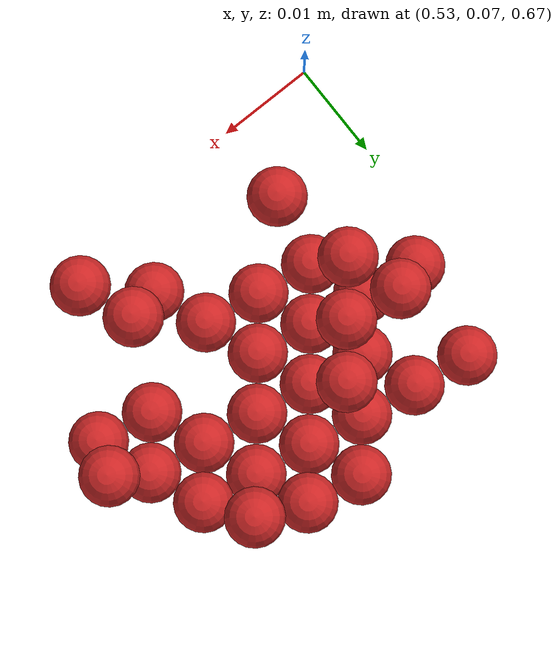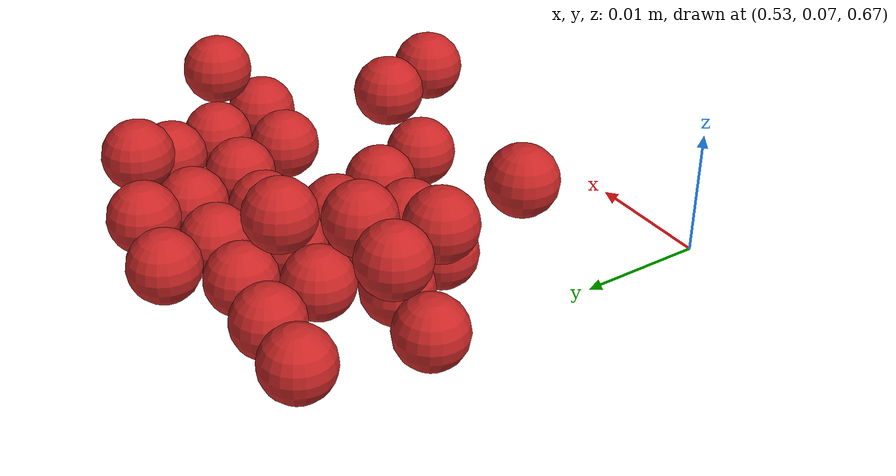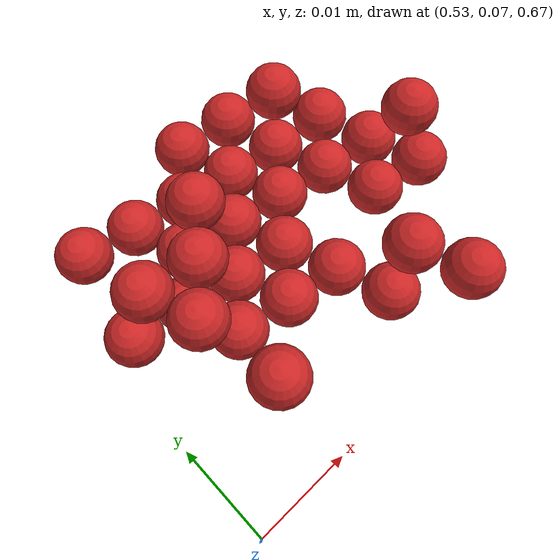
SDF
<sdf version="1.4">
 <world name="default">
  <model name="ground_plane">
   <static>1</static>
   <link name="link">
    <collision name="collision">
     <geometry><plane><normal>0 0 1</normal><size>100 100</size></plane></geometry>
     <surface><friction><ode><mu>100</mu><mu2>50</mu2></ode></friction></surface>
    </collision>
    <visual name="visual">
     <cast_shadows>0</cast_shadows>
     <geometry><plane><normal>0 0 1</normal><size>100 100</size></plane></geometry>
     <material>
      <script><uri>file://media/materials/scripts/gazebo.material</uri><name>Gazebo/Grey</name></script>
     </material>
    </visual>
    <velocity_decay><linear>0</linear><angular>0</angular></velocity_decay>
   </link>
  </model>
  <model name="sphere9">
   <pose>-0.00137 0.011253 -0.025864 -0.000341 0.000129 6.61744e-24</pose>
   <link name="link">
    <pose>0.540545 0.079517 0.694885 0 -0 0</pose>
    <inertial>
     <mass>1e-08</mass>
     <inertia><ixx>4e-08</ixx><ixy>0</ixy><ixz>0</ixz><iyy>4e-08</iyy><iyz>0</iyz><izz>4e-08</izz></inertia>
    </inertial>
    <collision name="collision">
     <surface>
      <bounce><restitution_coefficient>0.5</restitution_coefficient><threshold>0</threshold></bounce>
      <contact><ode><kp>1e+08</kp><kd>1</kd></ode></contact>
      <friction><ode><mu>1e-06</mu><mu2>1e-06</mu2></ode></friction>
     </surface>
     <geometry><sphere><radius>0.003</radius></sphere></geometry>
    </collision>
    <visual name="visual">
     <geometry><sphere><radius>0.003</radius></sphere></geometry>
     <material>
      <script><uri>file://media/materials/scripts/gazebo.material</uri><name>Gazebo/Red</name></script>
     </material>
    </visual>
    <velocity_decay><linear>0</linear><angular>0</angular></velocity_decay>
   </link>
   <static>0</static>
  </model>
  <model name="sphere11">
   <pose>0.017049 0.010197 -0.02053 -0.000122 0.000524 4.7e-05</pose>
   <link name="link">
    <pose>0.552545 0.079517 0.694885 0 -0 0</pose>
    <inertial>
     <mass>1e-08</mass>
     <inertia><ixx>4e-08</ixx><ixy>0</ixy><ixz>0</ixz><iyy>4e-08</iyy><iyz>0</iyz><izz>4e-08</izz></inertia>
    </inertial>
    <collision name="collision">
     <surface>
      <bounce><restitution_coefficient>0.5</restitution_coefficient><threshold>0</threshold></bounce>
      <contact><ode><kp>1e+08</kp><kd>1</kd></ode></contact>
      <friction><ode><mu>1e-06</mu><mu2>1e-06</mu2></ode></friction>
     </surface>
     <geometry><sphere><radius>0.003</radius></sphere></geometry>
    </collision>
    <visual name="visual">
     <geometry><sphere><radius>0.003</radius></sphere></geometry>
     <material>
      <script><uri>file://media/materials/scripts/gazebo.material</uri><name>Gazebo/Red</name></script>
     </material>
    </visual>
    <velocity_decay><linear>0</linear><angular>0</angular></velocity_decay>
   </link>
   <static>0</static>
  </model>
  <model name="sphere12">
   <pose>0.000833 0.016596 -0.025909 -0.000255 -0.000506 -0.000117</pose>
   <link name="link">
    <pose>0.534545 0.085517 0.694885 0 -0 0</pose>
    <inertial>
     <mass>1e-08</mass>
     <inertia><ixx>4e-08</ixx><ixy>0</ixy><ixz>0</ixz><iyy>4e-08</iyy><iyz>0</iyz><izz>4e-08</izz></inertia>
    </inertial>
    <collision name="collision">
     <surface>
      <bounce><restitution_coefficient>0.5</restitution_coefficient><threshold>0</threshold></bounce>
      <contact><ode><kp>1e+08</kp><kd>1</kd></ode></contact>
      <friction><ode><mu>1e-06</mu><mu2>1e-06</mu2></ode></friction>
     </surface>
     <geometry><sphere><radius>0.003</radius></sphere></geometry>
    </collision>
    <visual name="visual">
     <geometry><sphere><radius>0.003</radius></sphere></geometry>
     <material>
      <script><uri>file://media/materials/scripts/gazebo.material</uri><name>Gazebo/Red</name></script>
     </material>
    </visual>
    <velocity_decay><linear>0</linear><angular>0</angular></velocity_decay>
   </link>
   <static>0</static>
  </model>
  <model name="sphere14">
   <pose>0.010312 0.018721 -0.024799 0.000367 -0.000589 -0.000438</pose>
   <link name="link">
    <pose>0.546545 0.085517 0.694885 0 -0 0</pose>
    <inertial>
     <mass>1e-08</mass>
     <inertia><ixx>4e-08</ixx><ixy>0</ixy><ixz>0</ixz><iyy>4e-08</iyy><iyz>0</iyz><izz>4e-08</izz></inertia>
    </inertial>
    <collision name="collision">
     <surface>
      <bounce><restitution_coefficient>0.5</restitution_coefficient><threshold>0</threshold></bounce>
      <contact><ode><kp>1e+08</kp><kd>1</kd></ode></contact>
      <friction><ode><mu>1e-06</mu><mu2>1e-06</mu2></ode></friction>
     </surface>
     <geometry><sphere><radius>0.003</radius></sphere></geometry>
    </collision>
    <visual name="visual">
     <geometry><sphere><radius>0.003</radius></sphere></geometry>
     <material>
      <script><uri>file://media/materials/scripts/gazebo.material</uri><name>Gazebo/Red</name></script>
     </material>
    </visual>
    <velocity_decay><linear>0</linear><angular>0</angular></velocity_decay>
   </link>
   <static>0</static>
  </model>
  <model name="sphere15">
   <pose>0.008519 0.015651 -0.021432 -0.000885 0.000506 -0.000228</pose>
   <link name="link">
    <pose>0.552545 0.085517 0.694885 0 -0 0</pose>
    <inertial>
     <mass>1e-08</mass>
     <inertia><ixx>4e-08</ixx><ixy>0</ixy><ixz>0</ixz><iyy>4e-08</iyy><iyz>0</iyz><izz>4e-08</izz></inertia>
    </inertial>
    <collision name="collision">
     <surface>
      <bounce><restitution_coefficient>0.5</restitution_coefficient><threshold>0</threshold></bounce>
      <contact><ode><kp>1e+08</kp><kd>1</kd></ode></contact>
      <friction><ode><mu>1e-06</mu><mu2>1e-06</mu2></ode></friction>
     </surface>
     <geometry><sphere><radius>0.003</radius></sphere></geometry>
    </collision>
    <visual name="visual">
     <geometry><sphere><radius>0.003</radius></sphere></geometry>
     <material>
      <script><uri>file://media/materials/scripts/gazebo.material</uri><name>Gazebo/Red</name></script>
     </material>
    </visual>
    <velocity_decay><linear>0</linear><angular>0</angular></velocity_decay>
   </link>
   <static>0</static>
  </model>
  <model name="sphere26">
   <pose>0.006231 0.004149 -0.031625 0.000276 0.000655 0</pose>
   <link name="link">
    <pose>0.546545 0.079517 0.700885 0 -0 0</pose>
    <inertial>
     <mass>1e-08</mass>
     <inertia><ixx>4e-08</ixx><ixy>0</ixy><ixz>0</ixz><iyy>4e-08</iyy><iyz>0</iyz><izz>4e-08</izz></inertia>
    </inertial>
    <collision name="collision">
     <surface>
      <bounce><restitution_coefficient>0.5</restitution_coefficient><threshold>0</threshold></bounce>
      <contact><ode><kp>1e+08</kp><kd>1</kd></ode></contact>
      <friction><ode><mu>1e-06</mu><mu2>1e-06</mu2></ode></friction>
     </surface>
     <geometry><sphere><radius>0.003</radius></sphere></geometry>
    </collision>
    <visual name="visual">
     <geometry><sphere><radius>0.003</radius></sphere></geometry>
     <material>
      <script><uri>file://media/materials/scripts/gazebo.material</uri><name>Gazebo/Red</name></script>
     </material>
    </visual>
    <velocity_decay><linear>0</linear><angular>0</angular></velocity_decay>
   </link>
   <static>0</static>
  </model>
  <model name="sphere30">
   <pose>-2e-05 0.014712 -0.031812 -0.000101 0.000457 -1e-05</pose>
   <link name="link">
    <pose>0.546545 0.085517 0.700885 0 -0 0</pose>
    <inertial>
     <mass>1e-08</mass>
     <inertia><ixx>4e-08</ixx><ixy>0</ixy><ixz>0</ixz><iyy>4e-08</iyy><iyz>0</iyz><izz>4e-08</izz></inertia>
    </inertial>
    <collision name="collision">
     <surface>
      <bounce><restitution_coefficient>0.5</restitution_coefficient><threshold>0</threshold></bounce>
      <contact><ode><kp>1e+08</kp><kd>1</kd></ode></contact>
      <friction><ode><mu>1e-06</mu><mu2>1e-06</mu2></ode></friction>
     </surface>
     <geometry><sphere><radius>0.003</radius></sphere></geometry>
    </collision>
    <visual name="visual">
     <geometry><sphere><radius>0.003</radius></sphere></geometry>
     <material>
      <script><uri>file://media/materials/scripts/gazebo.material</uri><name>Gazebo/Red</name></script>
     </material>
    </visual>
    <velocity_decay><linear>0</linear><angular>0</angular></velocity_decay>
   </link>
   <static>0</static>
  </model>
  <model name="sphere31">
   <pose>0.008376 0.006946 -0.032013 -0.000408 -0.000157 0</pose>
   <link name="link">
    <pose>0.552545 0.085517 0.700885 0 -0 0</pose>
    <inertial>
     <mass>1e-08</mass>
     <inertia><ixx>4e-08</ixx><ixy>0</ixy><ixz>0</ixz><iyy>4e-08</iyy><iyz>0</iyz><izz>4e-08</izz></inertia>
    </inertial>
    <collision name="collision">
     <surface>
      <bounce><restitution_coefficient>0.5</restitution_coefficient><threshold>0</threshold></bounce>
      <contact><ode><kp>1e+08</kp><kd>1</kd></ode></contact>
      <friction><ode><mu>1e-06</mu><mu2>1e-06</mu2></ode></friction>
     </surface>
     <geometry><sphere><radius>0.003</radius></sphere></geometry>
    </collision>
    <visual name="visual">
     <geometry><sphere><radius>0.003</radius></sphere></geometry>
     <material>
      <script><uri>file://media/materials/scripts/gazebo.material</uri><name>Gazebo/Red</name></script>
     </material>
    </visual>
    <velocity_decay><linear>0</linear><angular>0</angular></velocity_decay>
   </link>
   <static>0</static>
  </model>
  <model name="sphere35">
   <pose>0.008203 0.005987 -0.033085 0 -0 0</pose>
   <link name="link">
    <pose>0.552545 0.067517 0.706885 0 -0 0</pose>
    <inertial>
     <mass>1e-08</mass>
     <inertia><ixx>4e-08</ixx><ixy>0</ixy><ixz>0</ixz><iyy>4e-08</iyy><iyz>0</iyz><izz>4e-08</izz></inertia>
    </inertial>
    <collision name="collision">
     <surface>
      <bounce><restitution_coefficient>0.5</restitution_coefficient><threshold>0</threshold></bounce>
      <contact><ode><kp>1e+08</kp><kd>1</kd></ode></contact>
      <friction><ode><mu>1e-06</mu><mu2>1e-06</mu2></ode></friction>
     </surface>
     <geometry><sphere><radius>0.003</radius></sphere></geometry>
    </collision>
    <visual name="visual">
     <geometry><sphere><radius>0.003</radius></sphere></geometry>
     <material>
      <script><uri>file://media/materials/scripts/gazebo.material</uri><name>Gazebo/Red</name></script>
     </material>
    </visual>
    <velocity_decay><linear>0</linear><angular>0</angular></velocity_decay>
   </link>
   <static>0</static>
  </model>
  <model name="sphere38">
   <pose>0.008831 0.004468 -0.037978 0.000169 -2e-05 0</pose>
   <link name="link">
    <pose>0.546545 0.073517 0.706885 0 -0 0</pose>
    <inertial>
     <mass>1e-08</mass>
     <inertia><ixx>4e-08</ixx><ixy>0</ixy><ixz>0</ixz><iyy>4e-08</iyy><iyz>0</iyz><izz>4e-08</izz></inertia>
    </inertial>
    <collision name="collision">
     <surface>
      <bounce><restitution_coefficient>0.5</restitution_coefficient><threshold>0</threshold></bounce>
      <contact><ode><kp>1e+08</kp><kd>1</kd></ode></contact>
      <friction><ode><mu>1e-06</mu><mu2>1e-06</mu2></ode></friction>
     </surface>
     <geometry><sphere><radius>0.003</radius></sphere></geometry>
    </collision>
    <visual name="visual">
     <geometry><sphere><radius>0.003</radius></sphere></geometry>
     <material>
      <script><uri>file://media/materials/scripts/gazebo.material</uri><name>Gazebo/Red</name></script>
     </material>
    </visual>
    <velocity_decay><linear>0</linear><angular>0</angular></velocity_decay>
   </link>
   <static>0</static>
  </model>
  <model name="sphere41">
   <pose>0.008118 0.01523 -0.037732 7.8e-05 0.000454 0</pose>
   <link name="link">
    <pose>0.540545 0.079517 0.706885 0 -0 0</pose>
    <inertial>
     <mass>1e-08</mass>
     <inertia><ixx>4e-08</ixx><ixy>0</ixy><ixz>0</ixz><iyy>4e-08</iyy><iyz>0</iyz><izz>4e-08</izz></inertia>
    </inertial>
    <collision name="collision">
     <surface>
      <bounce><restitution_coefficient>0.5</restitution_coefficient><threshold>0</threshold></bounce>
      <contact><ode><kp>1e+08</kp><kd>1</kd></ode></contact>
      <friction><ode><mu>1e-06</mu><mu2>1e-06</mu2></ode></friction>
     </surface>
     <geometry><sphere><radius>0.003</radius></sphere></geometry>
    </collision>
    <visual name="visual">
     <geometry><sphere><radius>0.003</radius></sphere></geometry>
     <material>
      <script><uri>file://media/materials/scripts/gazebo.material</uri><name>Gazebo/Red</name></script>
     </material>
    </visual>
    <velocity_decay><linear>0</linear><angular>0</angular></velocity_decay>
   </link>
   <static>0</static>
  </model>
  <model name="sphere42">
   <pose>0.016589 0.006974 -0.038002 -0.000941 -0.00026 -5.29396e-23</pose>
   <link name="link">
    <pose>0.546545 0.079517 0.706885 0 -0 0</pose>
    <inertial>
     <mass>1e-08</mass>
     <inertia><ixx>4e-08</ixx><ixy>0</ixy><ixz>0</ixz><iyy>4e-08</iyy><iyz>0</iyz><izz>4e-08</izz></inertia>
    </inertial>
    <collision name="collision">
     <surface>
      <bounce><restitution_coefficient>0.5</restitution_coefficient><threshold>0</threshold></bounce>
      <contact><ode><kp>1e+08</kp><kd>1</kd></ode></contact>
      <friction><ode><mu>1e-06</mu><mu2>1e-06</mu2></ode></friction>
     </surface>
     <geometry><sphere><radius>0.003</radius></sphere></geometry>
    </collision>
    <visual name="visual">
     <geometry><sphere><radius>0.003</radius></sphere></geometry>
     <material>
      <script><uri>file://media/materials/scripts/gazebo.material</uri><name>Gazebo/Red</name></script>
     </material>
    </visual>
    <velocity_decay><linear>0</linear><angular>0</angular></velocity_decay>
   </link>
   <static>0</static>
  </model>
  <model name="sphere45">
   <pose>0.000582 0.015702 -0.038161 -4e-05 -0.000252 2.4e-05</pose>
   <link name="link">
    <pose>0.540545 0.085517 0.706885 0 -0 0</pose>
    <inertial>
     <mass>1e-08</mass>
     <inertia><ixx>4e-08</ixx><ixy>0</ixy><ixz>0</ixz><iyy>4e-08</iyy><iyz>0</iyz><izz>4e-08</izz></inertia>
    </inertial>
    <collision name="collision">
     <surface>
      <bounce><restitution_coefficient>0.5</restitution_coefficient><threshold>0</threshold></bounce>
      <contact><ode><kp>1e+08</kp><kd>1</kd></ode></contact>
      <friction><ode><mu>1e-06</mu><mu2>1e-06</mu2></ode></friction>
     </surface>
     <geometry><sphere><radius>0.003</radius></sphere></geometry>
    </collision>
    <visual name="visual">
     <geometry><sphere><radius>0.003</radius></sphere></geometry>
     <material>
      <script><uri>file://media/materials/scripts/gazebo.material</uri><name>Gazebo/Red</name></script>
     </material>
    </visual>
    <velocity_decay><linear>0</linear><angular>0</angular></velocity_decay>
   </link>
   <static>0</static>
  </model>
  <model name="sphere47">
   <pose>0.011517 0.011318 -0.036294 -0.000169 0.000636 0.000693</pose>
   <link name="link">
    <pose>0.552545 0.085517 0.706885 0 -0 0</pose>
    <inertial>
     <mass>1e-08</mass>
     <inertia><ixx>4e-08</ixx><ixy>0</ixy><ixz>0</ixz><iyy>4e-08</iyy><iyz>0</iyz><izz>4e-08</izz></inertia>
    </inertial>
    <collision name="collision">
     <surface>
      <bounce><restitution_coefficient>0.5</restitution_coefficient><threshold>0</threshold></bounce>
      <contact><ode><kp>1e+08</kp><kd>1</kd></ode></contact>
      <friction><ode><mu>1e-06</mu><mu2>1e-06</mu2></ode></friction>
     </surface>
     <geometry><sphere><radius>0.003</radius></sphere></geometry>
    </collision>
    <visual name="visual">
     <geometry><sphere><radius>0.003</radius></sphere></geometry>
     <material>
      <script><uri>file://media/materials/scripts/gazebo.material</uri><name>Gazebo/Red</name></script>
     </material>
    </visual>
    <velocity_decay><linear>0</linear><angular>0</angular></velocity_decay>
   </link>
   <static>0</static>
  </model>
  <model name="sphere59">
   <pose>0.013589 0.011903 -0.042971 -0.000489 0.000824 7.1e-05</pose>
   <link name="link">
    <pose>0.552545 0.079517 0.712885 0 -0 0</pose>
    <inertial>
     <mass>1e-08</mass>
     <inertia><ixx>4e-08</ixx><ixy>0</ixy><ixz>0</ixz><iyy>4e-08</iyy><iyz>0</iyz><izz>4e-08</izz></inertia>
    </inertial>
    <collision name="collision">
     <surface>
      <bounce><restitution_coefficient>0.5</restitution_coefficient><threshold>0</threshold></bounce>
      <contact><ode><kp>1e+08</kp><kd>1</kd></ode></contact>
      <friction><ode><mu>1e-06</mu><mu2>1e-06</mu2></ode></friction>
     </surface>
     <geometry><sphere><radius>0.003</radius></sphere></geometry>
    </collision>
    <visual name="visual">
     <geometry><sphere><radius>0.003</radius></sphere></geometry>
     <material>
      <script><uri>file://media/materials/scripts/gazebo.material</uri><name>Gazebo/Red</name></script>
     </material>
    </visual>
    <velocity_decay><linear>0</linear><angular>0</angular></velocity_decay>
   </link>
   <static>0</static>
  </model>
  <model name="sphere62">
   <pose>0.003986 0.019132 -0.043205 -0.000272 0.000173 7.8e-05</pose>
   <link name="link">
    <pose>0.546545 0.085517 0.712885 0 -0 0</pose>
    <inertial>
     <mass>1e-08</mass>
     <inertia><ixx>4e-08</ixx><ixy>0</ixy><ixz>0</ixz><iyy>4e-08</iyy><iyz>0</iyz><izz>4e-08</izz></inertia>
    </inertial>
    <collision name="collision">
     <surface>
      <bounce><restitution_coefficient>0.5</restitution_coefficient><threshold>0</threshold></bounce>
      <contact><ode><kp>1e+08</kp><kd>1</kd></ode></contact>
      <friction><ode><mu>1e-06</mu><mu2>1e-06</mu2></ode></friction>
     </surface>
     <geometry><sphere><radius>0.003</radius></sphere></geometry>
    </collision>
    <visual name="visual">
     <geometry><sphere><radius>0.003</radius></sphere></geometry>
     <material>
      <script><uri>file://media/materials/scripts/gazebo.material</uri><name>Gazebo/Red</name></script>
     </material>
    </visual>
    <velocity_decay><linear>0</linear><angular>0</angular></velocity_decay>
   </link>
   <static>0</static>
  </model>
  <model name="sphere63">
   <pose>0.006445 0.012714 -0.044208 -0.000224 -0.000418 -3.2e-05</pose>
   <link name="link">
    <pose>0.552545 0.085517 0.712885 0 -0 0</pose>
    <inertial>
     <mass>1e-08</mass>
     <inertia><ixx>4e-08</ixx><ixy>0</ixy><ixz>0</ixz><iyy>4e-08</iyy><iyz>0</iyz><izz>4e-08</izz></inertia>
    </inertial>
    <collision name="collision">
     <surface>
      <bounce><restitution_coefficient>0.5</restitution_coefficient><threshold>0</threshold></bounce>
      <contact><ode><kp>1e+08</kp><kd>1</kd></ode></contact>
      <friction><ode><mu>1e-06</mu><mu2>1e-06</mu2></ode></friction>
     </surface>
     <geometry><sphere><radius>0.003</radius></sphere></geometry>
    </collision>
    <visual name="visual">
     <geometry><sphere><radius>0.003</radius></sphere></geometry>
     <material>
      <script><uri>file://media/materials/scripts/gazebo.material</uri><name>Gazebo/Red</name></script>
     </material>
    </visual>
    <velocity_decay><linear>0</linear><angular>0</angular></velocity_decay>
   </link>
   <static>0</static>
  </model>
  <model name="sphere73">
   <pose>0.004494 0.010476 -0.049859 -7e-05 0.00021 -1.65436e-24</pose>
   <link name="link">
    <pose>0.540545 0.079517 0.718885 0 -0 0</pose>
    <inertial>
     <mass>1e-08</mass>
     <inertia><ixx>4e-08</ixx><ixy>0</ixy><ixz>0</ixz><iyy>4e-08</iyy><iyz>0</iyz><izz>4e-08</izz></inertia>
    </inertial>
    <collision name="collision">
     <surface>
      <bounce><restitution_coefficient>0.5</restitution_coefficient><threshold>0</threshold></bounce>
      <contact><ode><kp>1e+08</kp><kd>1</kd></ode></contact>
      <friction><ode><mu>1e-06</mu><mu2>1e-06</mu2></ode></friction>
     </surface>
     <geometry><sphere><radius>0.003</radius></sphere></geometry>
    </collision>
    <visual name="visual">
     <geometry><sphere><radius>0.003</radius></sphere></geometry>
     <material>
      <script><uri>file://media/materials/scripts/gazebo.material</uri><name>Gazebo/Red</name></script>
     </material>
    </visual>
    <velocity_decay><linear>0</linear><angular>0</angular></velocity_decay>
   </link>
   <static>0</static>
  </model>
  <model name="sphere74">
   <pose>0.004634 0.009494 -0.049976 -9.9e-05 -9.3e-05 1.65436e-24</pose>
   <link name="link">
    <pose>0.546545 0.079517 0.718885 0 -0 0</pose>
    <inertial>
     <mass>1e-08</mass>
     <inertia><ixx>4e-08</ixx><ixy>0</ixy><ixz>0</ixz><iyy>4e-08</iyy><iyz>0</iyz><izz>4e-08</izz></inertia>
    </inertial>
    <collision name="collision">
     <surface>
      <bounce><restitution_coefficient>0.5</restitution_coefficient><threshold>0</threshold></bounce>
      <contact><ode><kp>1e+08</kp><kd>1</kd></ode></contact>
      <friction><ode><mu>1e-06</mu><mu2>1e-06</mu2></ode></friction>
     </surface>
     <geometry><sphere><radius>0.003</radius></sphere></geometry>
    </collision>
    <visual name="visual">
     <geometry><sphere><radius>0.003</radius></sphere></geometry>
     <material>
      <script><uri>file://media/materials/scripts/gazebo.material</uri><name>Gazebo/Red</name></script>
     </material>
    </visual>
    <velocity_decay><linear>0</linear><angular>0</angular></velocity_decay>
   </link>
   <static>0</static>
  </model>
  <model name="sphere75">
   <pose>0.016118 0.006648 -0.04931 -3e-06 0.00026 6e-06</pose>
   <link name="link">
    <pose>0.552545 0.079517 0.718885 0 -0 0</pose>
    <inertial>
     <mass>1e-08</mass>
     <inertia><ixx>4e-08</ixx><ixy>0</ixy><ixz>0</ixz><iyy>4e-08</iyy><iyz>0</iyz><izz>4e-08</izz></inertia>
    </inertial>
    <collision name="collision">
     <surface>
      <bounce><restitution_coefficient>0.5</restitution_coefficient><threshold>0</threshold></bounce>
      <contact><ode><kp>1e+08</kp><kd>1</kd></ode></contact>
      <friction><ode><mu>1e-06</mu><mu2>1e-06</mu2></ode></friction>
     </surface>
     <geometry><sphere><radius>0.003</radius></sphere></geometry>
    </collision>
    <visual name="visual">
     <geometry><sphere><radius>0.003</radius></sphere></geometry>
     <material>
      <script><uri>file://media/materials/scripts/gazebo.material</uri><name>Gazebo/Red</name></script>
     </material>
    </visual>
    <velocity_decay><linear>0</linear><angular>0</angular></velocity_decay>
   </link>
   <static>0</static>
  </model>
  <model name="sphere76">
   <pose>-0.000961 0.006678 -0.050226 0.000304 -0.000327 -1.32349e-23</pose>
   <link name="link">
    <pose>0.534545 0.085517 0.718885 0 -0 0</pose>
    <inertial>
     <mass>1e-08</mass>
     <inertia><ixx>4e-08</ixx><ixy>0</ixy><ixz>0</ixz><iyy>4e-08</iyy><iyz>0</iyz><izz>4e-08</izz></inertia>
    </inertial>
    <collision name="collision">
     <surface>
      <bounce><restitution_coefficient>0.5</restitution_coefficient><threshold>0</threshold></bounce>
      <contact><ode><kp>1e+08</kp><kd>1</kd></ode></contact>
      <friction><ode><mu>1e-06</mu><mu2>1e-06</mu2></ode></friction>
     </surface>
     <geometry><sphere><radius>0.003</radius></sphere></geometry>
    </collision>
    <visual name="visual">
     <geometry><sphere><radius>0.003</radius></sphere></geometry>
     <material>
      <script><uri>file://media/materials/scripts/gazebo.material</uri><name>Gazebo/Red</name></script>
     </material>
    </visual>
    <velocity_decay><linear>0</linear><angular>0</angular></velocity_decay>
   </link>
   <static>0</static>
  </model>
  <model name="sphere77">
   <pose>0.002185 0.010048 -0.049686 -0.000124 0.00047 0</pose>
   <link name="link">
    <pose>0.540545 0.085517 0.718885 0 -0 0</pose>
    <inertial>
     <mass>1e-08</mass>
     <inertia><ixx>4e-08</ixx><ixy>0</ixy><ixz>0</ixz><iyy>4e-08</iyy><iyz>0</iyz><izz>4e-08</izz></inertia>
    </inertial>
    <collision name="collision">
     <surface>
      <bounce><restitution_coefficient>0.5</restitution_coefficient><threshold>0</threshold></bounce>
      <contact><ode><kp>1e+08</kp><kd>1</kd></ode></contact>
      <friction><ode><mu>1e-06</mu><mu2>1e-06</mu2></ode></friction>
     </surface>
     <geometry><sphere><radius>0.003</radius></sphere></geometry>
    </collision>
    <visual name="visual">
     <geometry><sphere><radius>0.003</radius></sphere></geometry>
     <material>
      <script><uri>file://media/materials/scripts/gazebo.material</uri><name>Gazebo/Red</name></script>
     </material>
    </visual>
    <velocity_decay><linear>0</linear><angular>0</angular></velocity_decay>
   </link>
   <static>0</static>
  </model>
  <model name="sphere78">
   <pose>-0.000214 0.011478 -0.045108 0 -0 0</pose>
   <link name="link">
    <pose>0.546545 0.085517 0.718885 0 -0 0</pose>
    <inertial>
     <mass>1e-08</mass>
     <inertia><ixx>4e-08</ixx><ixy>0</ixy><ixz>0</ixz><iyy>4e-08</iyy><iyz>0</iyz><izz>4e-08</izz></inertia>
    </inertial>
    <collision name="collision">
     <surface>
      <bounce><restitution_coefficient>0.5</restitution_coefficient><threshold>0</threshold></bounce>
      <contact><ode><kp>1e+08</kp><kd>1</kd></ode></contact>
      <friction><ode><mu>1e-06</mu><mu2>1e-06</mu2></ode></friction>
     </surface>
     <geometry><sphere><radius>0.003</radius></sphere></geometry>
    </collision>
    <visual name="visual">
     <geometry><sphere><radius>0.003</radius></sphere></geometry>
     <material>
      <script><uri>file://media/materials/scripts/gazebo.material</uri><name>Gazebo/Red</name></script>
     </material>
    </visual>
    <velocity_decay><linear>0</linear><angular>0</angular></velocity_decay>
   </link>
   <static>0</static>
  </model>
  <model name="sphere79">
   <pose>0.002599 0.008004 -0.050117 -0.000285 -0.000339 2.64698e-23</pose>
   <link name="link">
    <pose>0.552545 0.085517 0.718885 0 -0 0</pose>
    <inertial>
     <mass>1e-08</mass>
     <inertia><ixx>4e-08</ixx><ixy>0</ixy><ixz>0</ixz><iyy>4e-08</iyy><iyz>0</iyz><izz>4e-08</izz></inertia>
    </inertial>
    <collision name="collision">
     <surface>
      <bounce><restitution_coefficient>0.5</restitution_coefficient><threshold>0</threshold></bounce>
      <contact><ode><kp>1e+08</kp><kd>1</kd></ode></contact>
      <friction><ode><mu>1e-06</mu><mu2>1e-06</mu2></ode></friction>
     </surface>
     <geometry><sphere><radius>0.003</radius></sphere></geometry>
    </collision>
    <visual name="visual">
     <geometry><sphere><radius>0.003</radius></sphere></geometry>
     <material>
      <script><uri>file://media/materials/scripts/gazebo.material</uri><name>Gazebo/Red</name></script>
     </material>
    </visual>
    <velocity_decay><linear>0</linear><angular>0</angular></velocity_decay>
   </link>
   <static>0</static>
  </model>
  <model name="sphere85">
   <pose>-0.000256 0.005073 -0.051066 0 -0 0</pose>
   <link name="link">
    <pose>0.540545 0.073517 0.724885 0 -0 0</pose>
    <inertial>
     <mass>1e-08</mass>
     <inertia><ixx>4e-08</ixx><ixy>0</ixy><ixz>0</ixz><iyy>4e-08</iyy><iyz>0</iyz><izz>4e-08</izz></inertia>
    </inertial>
    <collision name="collision">
     <surface>
      <bounce><restitution_coefficient>0.5</restitution_coefficient><threshold>0</threshold></bounce>
      <contact><ode><kp>1e+08</kp><kd>1</kd></ode></contact>
      <friction><ode><mu>1e-06</mu><mu2>1e-06</mu2></ode></friction>
     </surface>
     <geometry><sphere><radius>0.003</radius></sphere></geometry>
    </collision>
    <visual name="visual">
     <geometry><sphere><radius>0.003</radius></sphere></geometry>
     <material>
      <script><uri>file://media/materials/scripts/gazebo.material</uri><name>Gazebo/Red</name></script>
     </material>
    </visual>
    <velocity_decay><linear>0</linear><angular>0</angular></velocity_decay>
   </link>
   <static>0</static>
  </model>
  <model name="sphere87">
   <pose>0.006049 0.005598 -0.051057 0 -0 0</pose>
   <link name="link">
    <pose>0.552545 0.073517 0.724885 0 -0 0</pose>
    <inertial>
     <mass>1e-08</mass>
     <inertia><ixx>4e-08</ixx><ixy>0</ixy><ixz>0</ixz><iyy>4e-08</iyy><iyz>0</iyz><izz>4e-08</izz></inertia>
    </inertial>
    <collision name="collision">
     <surface>
      <bounce><restitution_coefficient>0.5</restitution_coefficient><threshold>0</threshold></bounce>
      <contact><ode><kp>1e+08</kp><kd>1</kd></ode></contact>
      <friction><ode><mu>1e-06</mu><mu2>1e-06</mu2></ode></friction>
     </surface>
     <geometry><sphere><radius>0.003</radius></sphere></geometry>
    </collision>
    <visual name="visual">
     <geometry><sphere><radius>0.003</radius></sphere></geometry>
     <material>
      <script><uri>file://media/materials/scripts/gazebo.material</uri><name>Gazebo/Red</name></script>
     </material>
    </visual>
    <velocity_decay><linear>0</linear><angular>0</angular></velocity_decay>
   </link>
   <static>0</static>
  </model>
  <model name="sphere88">
   <pose>0.004032 0.008021 -0.051107 0 -0 0</pose>
   <link name="link">
    <pose>0.534545 0.079517 0.724885 0 -0 0</pose>
    <inertial>
     <mass>1e-08</mass>
     <inertia><ixx>4e-08</ixx><ixy>0</ixy><ixz>0</ixz><iyy>4e-08</iyy><iyz>0</iyz><izz>4e-08</izz></inertia>
    </inertial>
    <collision name="collision">
     <surface>
      <bounce><restitution_coefficient>0.5</restitution_coefficient><threshold>0</threshold></bounce>
      <contact><ode><kp>1e+08</kp><kd>1</kd></ode></contact>
      <friction><ode><mu>1e-06</mu><mu2>1e-06</mu2></ode></friction>
     </surface>
     <geometry><sphere><radius>0.003</radius></sphere></geometry>
    </collision>
    <visual name="visual">
     <geometry><sphere><radius>0.003</radius></sphere></geometry>
     <material>
      <script><uri>file://media/materials/scripts/gazebo.material</uri><name>Gazebo/Red</name></script>
     </material>
    </visual>
    <velocity_decay><linear>0</linear><angular>0</angular></velocity_decay>
   </link>
   <static>0</static>
  </model>
  <model name="sphere89">
   <pose>0.00084 0.00585 -0.055939 -5.3e-05 1.9e-05 0</pose>
   <link name="link">
    <pose>0.540545 0.079517 0.724885 0 -0 0</pose>
    <inertial>
     <mass>1e-08</mass>
     <inertia><ixx>4e-08</ixx><ixy>0</ixy><ixz>0</ixz><iyy>4e-08</iyy><iyz>0</iyz><izz>4e-08</izz></inertia>
    </inertial>
    <collision name="collision">
     <surface>
      <bounce><restitution_coefficient>0.5</restitution_coefficient><threshold>0</threshold></bounce>
      <contact><ode><kp>1e+08</kp><kd>1</kd></ode></contact>
      <friction><ode><mu>1e-06</mu><mu2>1e-06</mu2></ode></friction>
     </surface>
     <geometry><sphere><radius>0.003</radius></sphere></geometry>
    </collision>
    <visual name="visual">
     <geometry><sphere><radius>0.003</radius></sphere></geometry>
     <material>
      <script><uri>file://media/materials/scripts/gazebo.material</uri><name>Gazebo/Red</name></script>
     </material>
    </visual>
    <velocity_decay><linear>0</linear><angular>0</angular></velocity_decay>
   </link>
   <static>0</static>
  </model>
  <model name="sphere90">
   <pose>0.000765 0.004923 -0.055922 -1.3e-05 2.2e-05 0</pose>
   <link name="link">
    <pose>0.546545 0.079517 0.724885 0 -0 0</pose>
    <inertial>
     <mass>1e-08</mass>
     <inertia><ixx>4e-08</ixx><ixy>0</ixy><ixz>0</ixz><iyy>4e-08</iyy><iyz>0</iyz><izz>4e-08</izz></inertia>
    </inertial>
    <collision name="collision">
     <surface>
      <bounce><restitution_coefficient>0.5</restitution_coefficient><threshold>0</threshold></bounce>
      <contact><ode><kp>1e+08</kp><kd>1</kd></ode></contact>
      <friction><ode><mu>1e-06</mu><mu2>1e-06</mu2></ode></friction>
     </surface>
     <geometry><sphere><radius>0.003</radius></sphere></geometry>
    </collision>
    <visual name="visual">
     <geometry><sphere><radius>0.003</radius></sphere></geometry>
     <material>
      <script><uri>file://media/materials/scripts/gazebo.material</uri><name>Gazebo/Red</name></script>
     </material>
    </visual>
    <velocity_decay><linear>0</linear><angular>0</angular></velocity_decay>
   </link>
   <static>0</static>
  </model>
  <model name="sphere92">
   <pose>0.001982 0.007654 -0.051078 -0 -0 -0</pose>
   <link name="link">
    <pose>0.534545 0.085517 0.724885 0 -0 0</pose>
    <inertial>
     <mass>1e-08</mass>
     <inertia><ixx>4e-08</ixx><ixy>0</ixy><ixz>0</ixz><iyy>4e-08</iyy><iyz>0</iyz><izz>4e-08</izz></inertia>
    </inertial>
    <collision name="collision">
     <surface>
      <bounce><restitution_coefficient>0.5</restitution_coefficient><threshold>0</threshold></bounce>
      <contact><ode><kp>1e+08</kp><kd>1</kd></ode></contact>
      <friction><ode><mu>1e-06</mu><mu2>1e-06</mu2></ode></friction>
     </surface>
     <geometry><sphere><radius>0.003</radius></sphere></geometry>
    </collision>
    <visual name="visual">
     <geometry><sphere><radius>0.003</radius></sphere></geometry>
     <material>
      <script><uri>file://media/materials/scripts/gazebo.material</uri><name>Gazebo/Red</name></script>
     </material>
    </visual>
    <velocity_decay><linear>0</linear><angular>0</angular></velocity_decay>
   </link>
   <static>0</static>
  </model>
  <model name="sphere93">
   <pose>0.001975 0.006706 -0.051067 0 -0 0</pose>
   <link name="link">
    <pose>0.540545 0.085517 0.724885 0 -0 0</pose>
    <inertial>
     <mass>1e-08</mass>
     <inertia><ixx>4e-08</ixx><ixy>0</ixy><ixz>0</ixz><iyy>4e-08</iyy><iyz>0</iyz><izz>4e-08</izz></inertia>
    </inertial>
    <collision name="collision">
     <surface>
      <bounce><restitution_coefficient>0.5</restitution_coefficient><threshold>0</threshold></bounce>
      <contact><ode><kp>1e+08</kp><kd>1</kd></ode></contact>
      <friction><ode><mu>1e-06</mu><mu2>1e-06</mu2></ode></friction>
     </surface>
     <geometry><sphere><radius>0.003</radius></sphere></geometry>
    </collision>
    <visual name="visual">
     <geometry><sphere><radius>0.003</radius></sphere></geometry>
     <material>
      <script><uri>file://media/materials/scripts/gazebo.material</uri><name>Gazebo/Red</name></script>
     </material>
    </visual>
    <velocity_decay><linear>0</linear><angular>0</angular></velocity_decay>
   </link>
   <static>0</static>
  </model>
  <model name="sphere94">
   <pose>0.005945 0.01384 -0.055854 5e-05 0.000382 -2e-06</pose>
   <link name="link">
    <pose>0.546545 0.085517 0.724885 0 -0 0</pose>
    <inertial>
     <mass>1e-08</mass>
     <inertia><ixx>4e-08</ixx><ixy>0</ixy><ixz>0</ixz><iyy>4e-08</iyy><iyz>0</iyz><izz>4e-08</izz></inertia>
    </inertial>
    <collision name="collision">
     <surface>
      <bounce><restitution_coefficient>0.5</restitution_coefficient><threshold>0</threshold></bounce>
      <contact><ode><kp>1e+08</kp><kd>1</kd></ode></contact>
      <friction><ode><mu>1e-06</mu><mu2>1e-06</mu2></ode></friction>
     </surface>
     <geometry><sphere><radius>0.003</radius></sphere></geometry>
    </collision>
    <visual name="visual">
     <geometry><sphere><radius>0.003</radius></sphere></geometry>
     <material>
      <script><uri>file://media/materials/scripts/gazebo.material</uri><name>Gazebo/Red</name></script>
     </material>
    </visual>
    <velocity_decay><linear>0</linear><angular>0</angular></velocity_decay>
   </link>
   <static>0</static>
  </model>
 </world>
</sdf>
